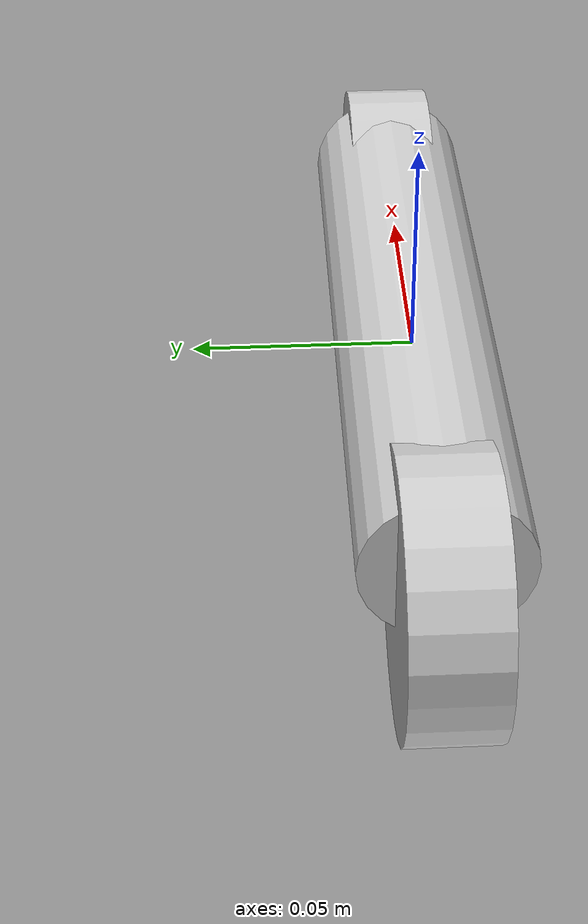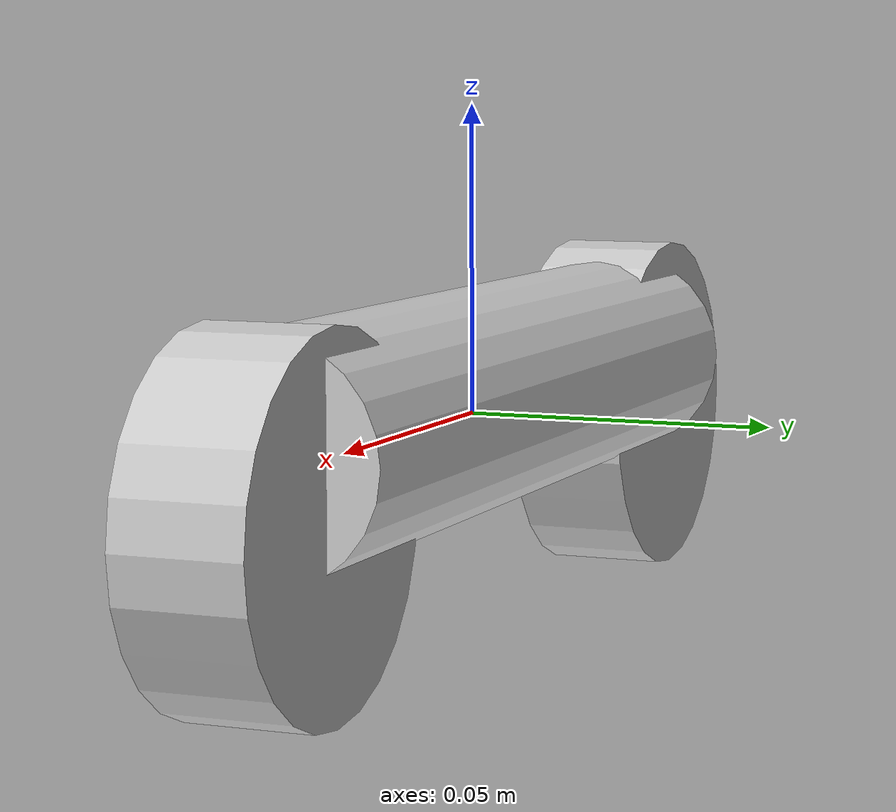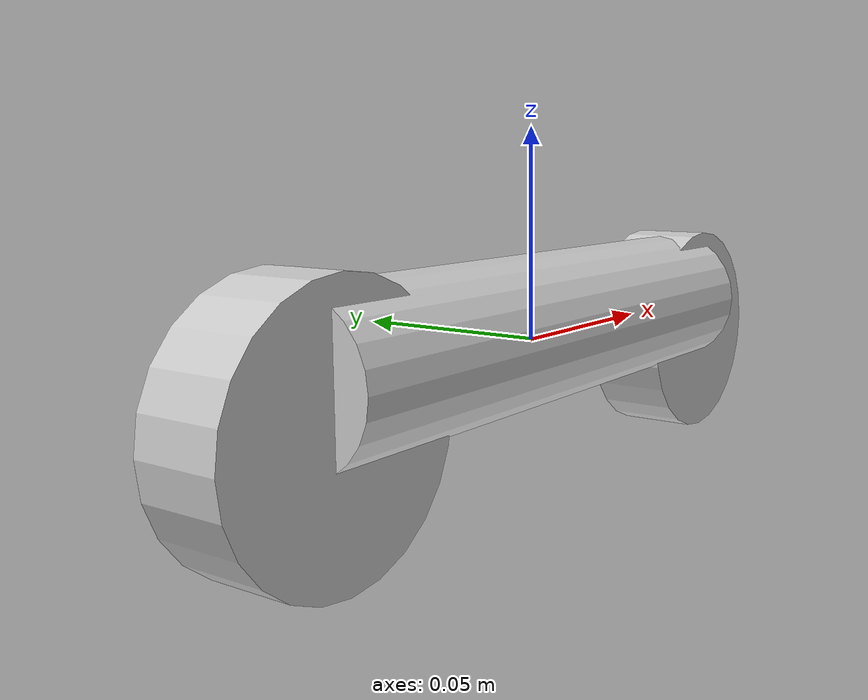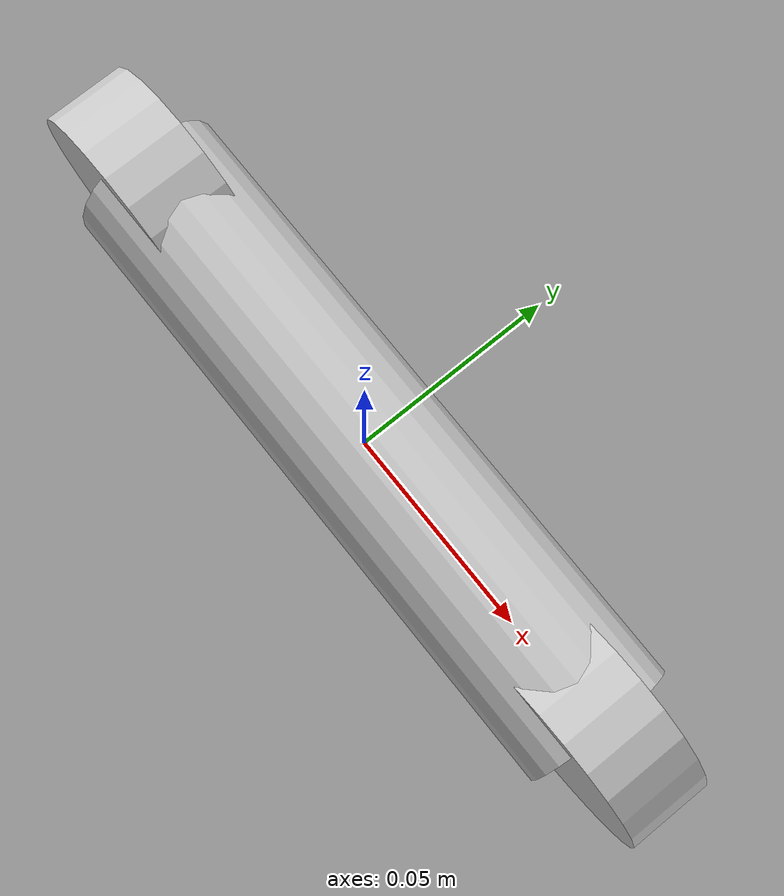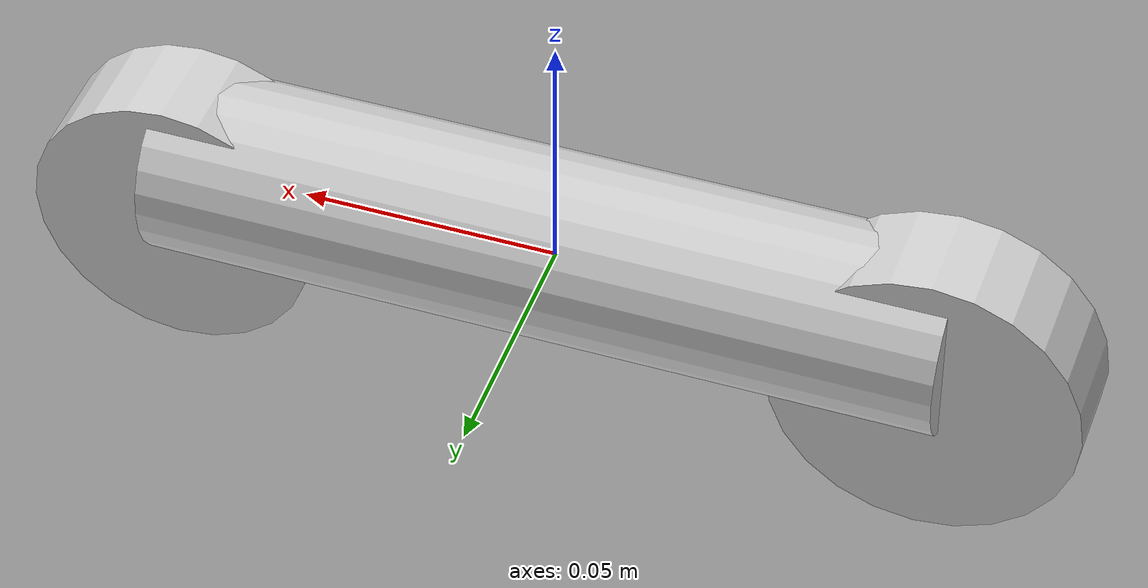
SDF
<?xml version="1.0"?>
<sdf version="1.7">
  <model name="wheelsActuator">

    <!-- INCLUDE ACTUATOR LINK -->
    <!-- Así hay un link actuator genérico que no depende de lo que haya después -->
    <link name="aLink">
      <pose>0 0 0 0 0 0</pose>
    </link>

    <!-- INCLUDE WHEELS BAR -->
    <link name="wbLink">
      <pose relative_to="j_a_wb">0 0 0 0 0 0</pose>
      <inertial>
        <mass>0.2</mass>
        <inertia>
          <ixx>0.064</ixx>
          <ixy>0</ixy>
          <ixz>0</ixz>
          <iyy>0.064</iyy>
          <iyz>0</iyz>
          <izz>0.00024</izz>
        </inertia>
      </inertial>
      <collision name='collision'>
        <geometry>
          <cylinder>
            <radius>0.018</radius> <!--Rab-->
            <length>0.155</length> <!--Lab-->
          </cylinder>
        </geometry>
      </collision>
      <visual name='visual'>
        <transparency>0.1</transparency>
        <geometry>
          <cylinder>
            <radius>0.018</radius> <!--Rab-->
            <length>0.155</length> <!--Lab-->
          </cylinder>
        </geometry>
          <material>
            <ambient>0.8 0.8 0.8 1</ambient>
            <diffuse>0.8 0.8 0.8 1</diffuse>
            <specular>0.8 0.8 0.8 1</specular>
          </material>
      </visual>
    </link>

    <!-- JOINT ACTUATOR - WHEELS BAR -->
    <joint name="j_a_wb" type="fixed">
      <pose relative_to="aLink">0 0 0.0025 0 1.5708 0</pose>
      <parent>aLink</parent>
      <child>wbLink</child>
    </joint>

    <!-- INCLUDE FRONT WHEEL -->
    <link name="fwLink">
      <pose relative_to="j_wb_fw">0 0 0 0 0 0</pose>
      <inertial>
        <mass>0.1</mass>
        <inertia>
          <ixx>0.064</ixx>
          <ixy>0</ixy>
          <ixz>0</ixz>
          <iyy>0.064</iyy>
          <iyz>0</iyz>
          <izz>0.00024</izz>
        </inertia>
      </inertial>
      <collision name='collision'>
        <geometry>
          <cylinder>
            <radius>0.028</radius> <!-- Rw -->
            <length>0.020</length> <!-- Lw -->
          </cylinder>
        </geometry>
      </collision>
      <visual name='visual'>
        <transparency>0.1</transparency>
        <geometry>
          <cylinder>
            <radius>0.028</radius> <!-- Rw -->
            <length>0.020</length> <!-- Lw -->
          </cylinder>
        </geometry>
          <material>
            <ambient>0.8 0.8 0.8 1</ambient>
            <diffuse>0.8 0.8 0.8 1</diffuse>
            <specular>0.8 0.8 0.8 1</specular>
          </material>
      </visual>
    </link>

    <!-- JOINT WHEELS BAR - FRONT WHEEL -->
    <joint name="j_wb_fw" type="revolute">
      <pose relative_to="wbLink">0.009 0 0.07425 1.5708 0 0</pose>
      <parent>wbLink</parent>
      <child>fwLink</child>
      <axis>
        <!--El eje de giro de la rueda está en el eje fwZ en sentido positivo-->
        <xyz>0 0 1</xyz>
      </axis>
    </joint>

        <!-- INCLUDE REAR WHEEL -->
    <link name="rwLink">
      <pose relative_to="j_wb_rw">0 0 0 0 0 0</pose>
      <inertial>
        <mass>0.1</mass>
        <inertia>
          <ixx>0.064</ixx>
          <ixy>0</ixy>
          <ixz>0</ixz>
          <iyy>0.064</iyy>
          <iyz>0</iyz>
          <izz>0.00024</izz>
        </inertia>
      </inertial>
      <collision name='collision'>
        <geometry>
          <cylinder>
            <radius>0.030</radius> <!-- Rw -->
            <length>0.020</length> <!-- Lw -->
          </cylinder>
        </geometry>
      </collision>
      <visual name='visual'>
        <transparency>0.1</transparency>
        <geometry>
          <cylinder>
            <radius>0.030</radius> <!-- Rw -->
            <length>0.020</length> <!-- Lw -->
          </cylinder>
        </geometry>
          <material>
            <ambient>0.8 0.8 0.8 1</ambient>
            <diffuse>0.8 0.8 0.8 1</diffuse>
            <specular>0.8 0.8 0.8 1</specular>
          </material>
      </visual>
    </link>

    <!-- JOINT WHEELS BAR - REAR WHEEL -->
    <joint name="j_wb_rw" type="revolute">
      <pose relative_to="wbLink">0.009 0 -0.07425 1.5708 0 0</pose>
      <parent>wbLink</parent>
      <child>rwLink</child>
      <axis>
        <!--El eje de giro de la rueda está en el eje rwZ en sentido positivo-->
        <xyz>0 0 1</xyz>
      </axis>
    </joint>

  </model>
</sdf>
